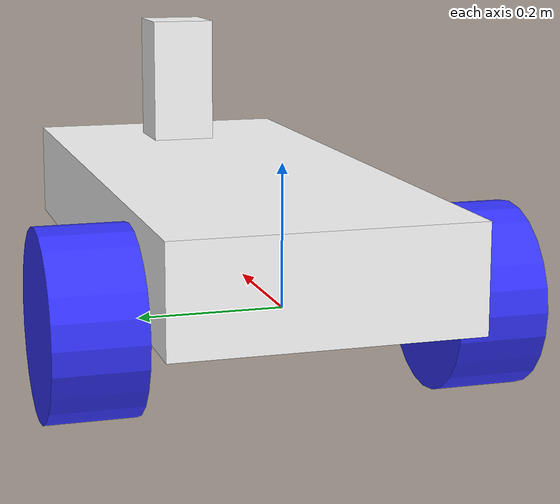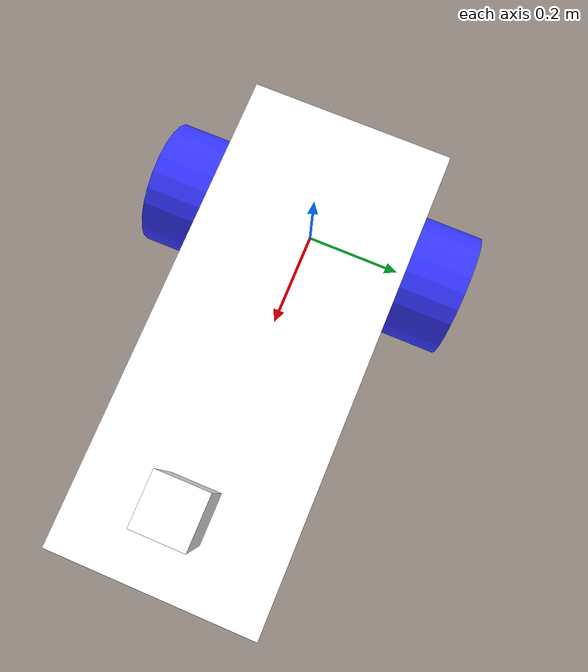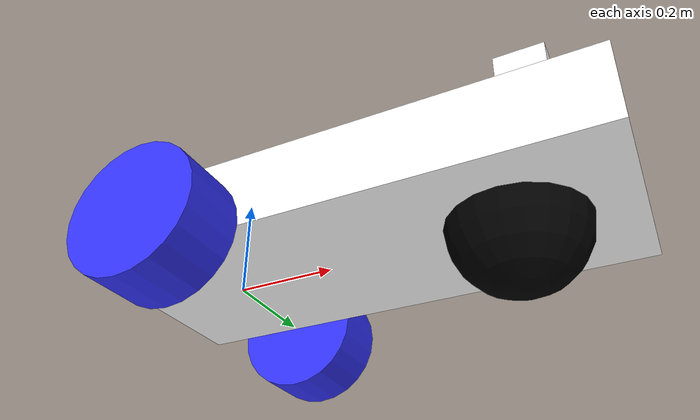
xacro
<?xml version="1.0"?>
<robot xmlns:xacro="http://www.ros.org/wiki/xacro" >

    <xacro:include filename="inertial_macros.xacro"/>

    <material name="white">
        <color rgba="1 1 1 1" />
    </material>

    <material name="orange">
        <color rgba="1 0.3 0.1 1"/>
    </material>

    <material name="blue">
        <color rgba="0.2 0.2 1 1"/>
    </material>

    <material name="black">
        <color rgba="0 0 0 1"/>
    </material>

    <!-- BASE LINK -->

    <link name="base_link">

    </link>

    <!-- CHASSIS LINK -->

    <joint name="chassis_joint" type="fixed">
        <parent link="base_link"/>
        <child link="chassis"/>
        <origin xyz="-0.212 0 0"/>
    </joint>

    <link name="chassis">
        <visual>
            <origin xyz="0.495 0 0.075"/>
            <geometry>
                <box size="0.99 0.42 0.15"/>
            </geometry>
            <material name="white"/>
        </visual>
        <collision>
            <origin xyz="0.495 0 0.075"/>
            <geometry>
                <box size="0.99 0.42 0.15"/>
            </geometry>
        </collision>
        <xacro:inertial_box mass="0.5" x="0.99" y="0.42" z="0.15">
            <origin xyz="0.15 0 0.075" rpy="0 0 0"/>
        </xacro:inertial_box>
    </link>

    <gazebo reference="chassis">
        <material>Gazebo/White</material>
    </gazebo>

    <!-- ARM LINK -->

    <joint name="arm_joint" type="fixed">
        <parent link="chassis"/>
        <child link="arm"/>
        <origin xyz="0.778 0 0.15"/>
    </joint>

    <link name="arm">
        <visual>
            <origin xyz="0.05 0 0.1"/>
            <geometry>
                <box size="0.1 0.1 0.2"/>
            </geometry>
            <material name="white"/>
        </visual>
        <collision>
            <origin xyz="0.05 0 0.1"/>
            <geometry>
                <box size="0.1 0.1 0.2"/>
            </geometry>
        </collision>
        <xacro:inertial_box mass="0.5" x="0.1" y="0.1" z="0.2">
            <origin xyz="0.05 0 0.1" rpy="0 0 0"/>
        </xacro:inertial_box>
    </link>

    <gazebo reference="arm">
        <material>Gazebo/White</material>
    </gazebo>

    <!-- LEFT WHEEL LINK -->

    <joint name="left_wheel_joint" type="continuous">
        <parent link="base_link"/>
        <child link="left_wheel"/>
        <origin xyz="0 0.2725 0" rpy="-${pi/2} 0 0" />
        <axis xyz="0 0 1"/>
    </joint>

    <link name="left_wheel">
        <visual>
            <geometry>
                <cylinder radius="0.13" length="0.125"/>
            </geometry>
            <material name="blue"/>
        </visual>
        <collision>
            <geometry>
                <cylinder radius="0.13" length="0.125"/>
            </geometry>
        </collision>
        <xacro:inertial_cylinder mass="0.1" length="0.125" radius="0.13">
            <origin xyz="0 0 0" rpy="0 0 0"/>
        </xacro:inertial_cylinder>
    </link>

    <gazebo reference="left_wheel">
        <material>Gazebo/Blue</material>
    </gazebo>

    <!-- RIGHT WHEEL LINK -->

    <joint name="right_wheel_joint" type="continuous">
        <parent link="base_link"/>
        <child link="right_wheel"/>
        <origin xyz="0 -0.2725 0" rpy="${pi/2} 0 0" />
        <axis xyz="0 0 -1"/>
    </joint>

    <link name="right_wheel">
        <visual>
            <geometry>
                <cylinder radius="0.13" length="0.125"/>
            </geometry>
            <material name="blue"/>
        </visual>
        <collision>
            <geometry>
                <cylinder radius="0.13" length="0.125"/>
            </geometry>
        </collision>
        <xacro:inertial_cylinder mass="0.1" length="0.125" radius="0.13">
            <origin xyz="0 0 0" rpy="0 0 0"/>
        </xacro:inertial_cylinder>
    </link>

    <gazebo reference="right_wheel">
        <material>Gazebo/Blue</material>
    </gazebo>

    <!-- CASTER WHEEL LINK -->

    <joint name="caster_wheel_joint" type="fixed">
        <parent link="chassis"/>
        <child link="caster_wheel"/>
        <origin xyz="0.778 0 0"/>
    </joint>

    <link name="caster_wheel">
        <visual>
            <geometry>
                <sphere radius="0.13"/>
            </geometry>
            <material name="black"/>
        </visual>
        <collision>
            <geometry>
                <sphere radius="0.13"/>
            </geometry>
        </collision>
        <xacro:inertial_sphere mass="0.1" radius="0.13">
            <origin xyz="0 0 0" rpy="0 0 0"/>
        </xacro:inertial_sphere>
    </link>

    <gazebo reference="caster_wheel">
        <material>Gazebo/Black</material>
        <mu1 value="0.001"/>
        <mu2 value="0.001"/>
    </gazebo>

</robot>
